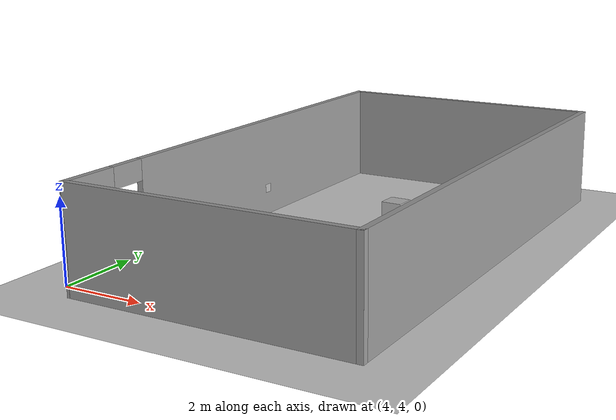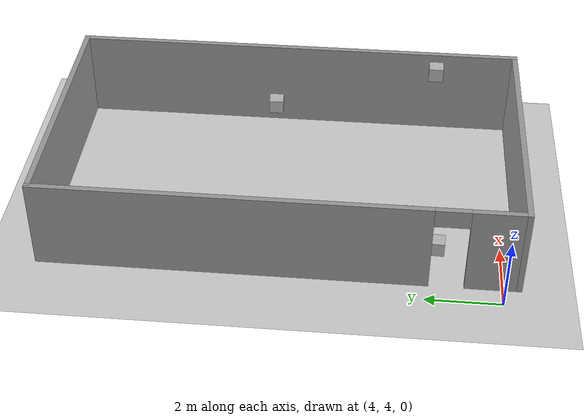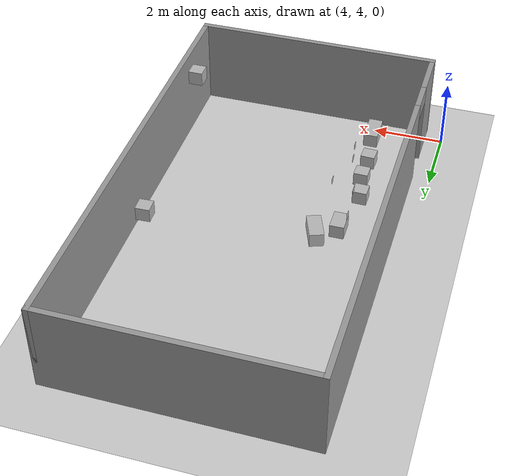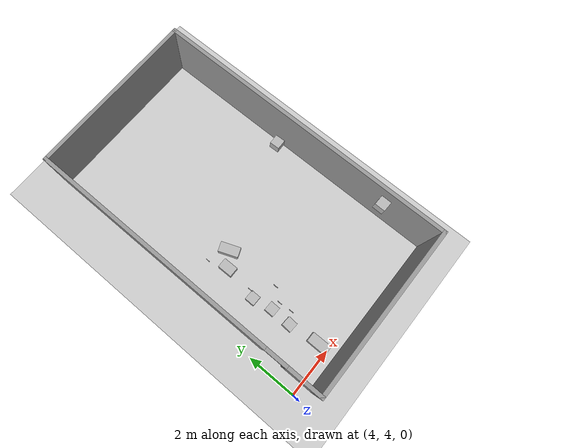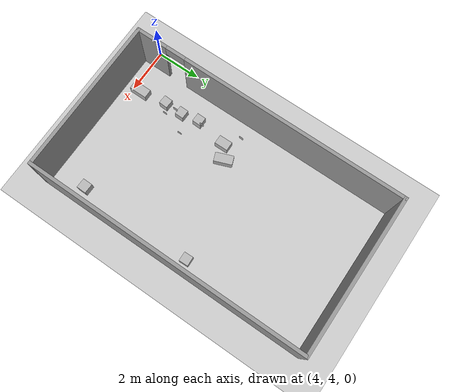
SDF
<sdf version="1.6">
 <world name="default">
  <model name="ground_plane">
   <static>1</static>
   <link name="link">
    <collision name="collision">
     <geometry><plane><normal>0 0 1</normal><size>300 300</size></plane></geometry>
     <surface>
      <contact><collide_bitmask>65535</collide_bitmask></contact>
      <friction><ode><mu>100</mu><mu2>50</mu2></ode></friction>
     </surface>
    </collision>
    <visual name="visual">
     <geometry><plane><normal>0 0 1</normal><size>100 100</size></plane></geometry>
     <material>
      <script><uri>file://media/materials/scripts/gazebo.material</uri><name>Gazebo/Grey</name></script>
     </material>
    </visual>
   </link>
  </model>
  <model name="Caja">
   <link name="link">
    <pose>0 0 0.25 0 -0 0</pose>
    <inertial>
     <mass>0.39</mass>
     <inertia><ixx>0.00058</ixx><ixy>0</ixy><ixz>0</ixz><iyy>0.00058</iyy><iyz>0</iyz><izz>0.00019</izz></inertia>
    </inertial>
    <collision name="collision"><geometry><box><size>0.4 0.4 0.4</size></box></geometry></collision>
    <visual name="visual">
     <geometry><box><size>0.4 0.4 0.4</size></box></geometry>
     <material>
      <script>
       <uri>model://Caja/materials/scripts</uri>
       <uri>model://Caja/materials/textures</uri>
       <name>Caja/Diffuse</name>
      </script>
     </material>
    </visual>
   </link>
   <pose>5.84748 5.89754 0.199997 1.57079 -6e-06 -0.052738</pose>
  </model>
  <model name="CuboQR2">
   <link name="link">
    <pose>0 0 0.25 0 -0 0</pose>
    <inertial>
     <mass>0.39</mass>
     <inertia><ixx>0.00058</ixx><ixy>0</ixy><ixz>0</ixz><iyy>0.00058</iyy><iyz>0</iyz><izz>0.00019</izz></inertia>
    </inertial>
    <collision name="collision"><geometry><box><size>0.4 0.4 0.4</size></box></geometry></collision>
    <visual name="visual">
     <geometry><box><size>0.4 0.4 0.4</size></box></geometry>
     <material>
      <script>
       <uri>model://Caja/materials/scripts</uri>
       <uri>model://Caja/materials/textures</uri>
       <name>Caja/Diffuse</name>
      </script>
     </material>
    </visual>
   </link>
   <pose>5.85201 6.48341 -0.05 1.6e-05 -0 -0.017766</pose>
  </model>
  <model name="CuboQR3">
   <link name="link">
    <pose>0 0 0.25 0 -0 0</pose>
    <inertial>
     <mass>0.39</mass>
     <inertia><ixx>0.00058</ixx><ixy>0</ixy><ixz>0</ixz><iyy>0.00058</iyy><iyz>0</iyz><izz>0.00019</izz></inertia>
    </inertial>
    <collision name="collision"><geometry><box><size>0.4 0.4 0.4</size></box></geometry></collision>
    <visual name="visual">
     <geometry><box><size>0.4 0.4 0.4</size></box></geometry>
     <material>
      <script>
       <uri>model://Caja/materials/scripts</uri>
       <uri>model://Caja/materials/textures</uri>
       <name>Caja/Diffuse</name>
      </script>
     </material>
    </visual>
   </link>
   <pose>5.70066 7.28507 -0.05 2.4e-05 -0 -0.014201</pose>
  </model>
  <model name="CuboQR4">
   <link name="link">
    <pose>0 0 0.25 0 -0 0</pose>
    <inertial>
     <mass>0.39</mass>
     <inertia><ixx>0.00058</ixx><ixy>0</ixy><ixz>0</ixz><iyy>0.00058</iyy><iyz>0</iyz><izz>0.00019</izz></inertia>
    </inertial>
    <collision name="collision"><geometry><box><size>0.4 0.8 0.4</size></box></geometry></collision>
    <visual name="visual">
     <geometry><box><size>0.4 0.8 0.4</size></box></geometry>
     <material>
      <script>
       <uri>model://Caja/materials/scripts</uri>
       <uri>model://Caja/materials/textures</uri>
       <name>Caja/Diffuse</name>
      </script>
     </material>
    </visual>
   </link>
   <pose>5.98368 4.39523 -0.056152 -0.01564 0 -1e-06</pose>
  </model>
  <model name="CuboQR8">
   <link name="link">
    <pose>0 0 0.25 0 -0 0</pose>
    <inertial>
     <mass>0.39</mass>
     <inertia><ixx>0.00058</ixx><ixy>0</ixy><ixz>0</ixz><iyy>0.00058</iyy><iyz>0</iyz><izz>0.00019</izz></inertia>
    </inertial>
    <collision name="collision"><geometry><box><size>0.4 0.8 0.4</size></box></geometry></collision>
    <visual name="visual">
     <geometry><box><size>0.4 0.8 0.4</size></box></geometry>
     <material>
      <script>
       <uri>model://Caja/materials/scripts</uri>
       <uri>model://Caja/materials/textures</uri>
       <name>Caja/Diffuse</name>
      </script>
     </material>
    </visual>
   </link>
   <pose>6.53522 9.1266 -0.05 -1e-06 9e-06 0.366667</pose>
  </model>
  <model name="CuboQR30">
   <link name="link">
    <pose>0 0 0.25 0 -0 0</pose>
    <inertial>
     <mass>0.39</mass>
     <inertia><ixx>0.00058</ixx><ixy>0</ixy><ixz>0</ixz><iyy>0.00058</iyy><iyz>0</iyz><izz>0.00019</izz></inertia>
    </inertial>
    <collision name="collision"><geometry><box><size>0.4 0.6 0.4</size></box></geometry></collision>
    <visual name="visual">
     <geometry><box><size>0.4 0.6 0.4</size></box></geometry>
     <material>
      <script>
       <uri>model://Caja/materials/scripts</uri>
       <uri>model://Caja/materials/textures</uri>
       <name>Caja/Diffuse</name>
      </script>
     </material>
    </visual>
   </link>
   <pose>5.97302 8.728 -0.050005 -1.6e-05 0 0.010739</pose>
  </model>
  <model name="qrware">
   <pose>7.98806 9.76227 0 0 -0 0</pose>
   <link name="Wall_2">
    <pose>-3.425 0 0 0 -0 1.5708</pose>
    <visual name="Wall_2_Visual_0">
     <pose>-5.51907 0 1.25 0 -0 0</pose>
     <geometry><box><size>1.46186 0.15 2.5</size></box></geometry>
     <material>
      <script><uri>file://media/materials/scripts/gazebo.material</uri><name>Gazebo/Grey</name></script>
      <ambient>1 1 1 1</ambient>
     </material>
     <meta><layer>0</layer></meta>
    </visual>
    <collision name="Wall_2_Collision_0">
     <geometry><box><size>1.46186 0.15 2.5</size></box></geometry>
     <pose>-5.51907 0 1.25 0 -0 0</pose>
    </collision>
    <visual name="Wall_2_Visual_1">
     <pose>1.18093 0 1.25 0 -0 0</pose>
     <geometry><box><size>10.1381 0.15 2.5</size></box></geometry>
     <material>
      <script><uri>file://media/materials/scripts/gazebo.material</uri><name>Gazebo/Grey</name></script>
      <ambient>1 1 1 1</ambient>
     </material>
     <meta><layer>0</layer></meta>
    </visual>
    <collision name="Wall_2_Collision_1">
     <geometry><box><size>10.1381 0.15 2.5</size></box></geometry>
     <pose>1.18093 0 1.25 0 -0 0</pose>
    </collision>
    <visual name="Wall_2_Visual_2">
     <pose>-4.33814 0 2.25 0 -0 0</pose>
     <geometry><box><size>0.9 0.15 0.5</size></box></geometry>
     <material>
      <script><uri>file://media/materials/scripts/gazebo.material</uri><name>Gazebo/Grey</name></script>
      <ambient>1 1 1 1</ambient>
     </material>
     <meta><layer>0</layer></meta>
    </visual>
    <collision name="Wall_2_Collision_2">
     <geometry><box><size>0.9 0.15 0.5</size></box></geometry>
     <pose>-4.33814 0 2.25 0 -0 0</pose>
    </collision>
   </link>
   <link name="Wall_3">
    <collision name="Wall_3_Collision">
     <geometry><box><size>7 0.15 2.5</size></box></geometry>
     <pose>0 0 1.25 0 -0 0</pose>
    </collision>
    <visual name="Wall_3_Visual">
     <pose>0 0 1.25 0 -0 0</pose>
     <geometry><box><size>7 0.15 2.5</size></box></geometry>
     <material>
      <script><uri>file://media/materials/scripts/gazebo.material</uri><name>Gazebo/Grey</name></script>
      <ambient>1 1 1 1</ambient>
     </material>
     <meta><layer>0</layer></meta>
    </visual>
    <pose>0 6.175 0 0 -0 0</pose>
   </link>
   <link name="Wall_4">
    <collision name="Wall_4_Collision">
     <geometry><box><size>12.5 0.15 2.5</size></box></geometry>
     <pose>0 0 1.25 0 -0 0</pose>
    </collision>
    <visual name="Wall_4_Visual">
     <pose>0 0 1.25 0 -0 0</pose>
     <geometry><box><size>12.5 0.15 2.5</size></box></geometry>
     <material>
      <script><uri>file://media/materials/scripts/gazebo.material</uri><name>Gazebo/Grey</name></script>
      <ambient>1 1 1 1</ambient>
     </material>
     <meta><layer>0</layer></meta>
    </visual>
    <pose>3.425 0 0 0 0 -1.5708</pose>
   </link>
   <link name="Wall_6">
    <collision name="Wall_6_Collision">
     <geometry><box><size>7 0.15 2.5</size></box></geometry>
     <pose>0 0 1.25 0 -0 0</pose>
    </collision>
    <visual name="Wall_6_Visual">
     <pose>0 0 1.25 0 -0 0</pose>
     <geometry><box><size>7 0.15 2.5</size></box></geometry>
     <material>
      <script><uri>file://media/materials/scripts/gazebo.material</uri><name>Gazebo/Grey</name></script>
      <ambient>1 1 1 1</ambient>
     </material>
     <meta><layer>0</layer></meta>
    </visual>
    <pose>0 -6.175 0 0 -0 0</pose>
   </link>
   <static>1</static>
  </model>
  <model name="Plano">
   <link name="link">
    <gravity>0</gravity>
    <pose>0 0 0.25 0 -0 0</pose>
    <inertial>
     <mass>1e-06</mass>
     <inertia><ixx>0.00058</ixx><ixy>0</ixy><ixz>0</ixz><iyy>0.00058</iyy><iyz>0</iyz><izz>0.00019</izz></inertia>
    </inertial>
    <collision name="collision"><geometry><box><size>0.2 1e-06 0.2</size></box></geometry></collision>
    <visual name="visual">
     <geometry><box><size>0.2 1e-06 0.2</size></box></geometry>
     <material>
      <script>
       <uri>model://Plano/materials/scripts</uri>
       <uri>model://Plano/materials/textures</uri>
       <name>Plano/Diffuse</name>
      </script>
     </material>
     <cast_shadows>0</cast_shadows>
    </visual>
   </link>
   <pose>6.24495 5.89293 0.053748 0 0 -1.57043</pose>
  </model>
  <model name="Plano2">
   <link name="link">
    <gravity>0</gravity>
    <pose>0 0 0.25 0 -0 0</pose>
    <inertial>
     <mass>1e-06</mass>
     <inertia><ixx>0.00058</ixx><ixy>0</ixy><ixz>0</ixz><iyy>0.00058</iyy><iyz>0</iyz><izz>0.00019</izz></inertia>
    </inertial>
    <collision name="collision"><geometry><box><size>0.2 1e-06 0.2</size></box></geometry></collision>
    <visual name="visual">
     <geometry><box><size>0.2 1e-06 0.2</size></box></geometry>
     <material>
      <script>
       <uri>model://Plano2/materials/scripts</uri>
       <uri>model://Plano2/materials/textures</uri>
       <name>Plano2/Diffuse</name>
      </script>
     </material>
     <cast_shadows>0</cast_shadows>
    </visual>
   </link>
   <pose>6.11634 6.41923 0.90763 0 0 -1.5813</pose>
  </model>
  <model name="Plano3">
   <link name="link">
    <gravity>0</gravity>
    <pose>0 0 0.25 0 -0 0</pose>
    <inertial>
     <mass>1e-06</mass>
     <inertia><ixx>0.00058</ixx><ixy>0</ixy><ixz>0</ixz><iyy>0.00058</iyy><iyz>0</iyz><izz>0.00019</izz></inertia>
    </inertial>
    <collision name="collision"><geometry><box><size>0.2 1e-06 0.2</size></box></geometry></collision>
    <visual name="visual">
     <geometry><box><size>0.2 1e-06 0.2</size></box></geometry>
     <material>
      <script>
       <uri>model://Plano3/materials/scripts</uri>
       <uri>model://Plano3/materials/textures</uri>
       <name>Plano3/Diffuse</name>
      </script>
     </material>
     <cast_shadows>0</cast_shadows>
    </visual>
   </link>
   <pose>6.60144 6.90216 -0.05097 0 0 -1.57531</pose>
  </model>
  <model name="Plano4">
   <link name="link">
    <gravity>0</gravity>
    <pose>0 0 0.25 0 -0 0</pose>
    <inertial>
     <mass>1e-06</mass>
     <inertia><ixx>0.00058</ixx><ixy>0</ixy><ixz>0</ixz><iyy>0.00058</iyy><iyz>0</iyz><izz>0.00019</izz></inertia>
    </inertial>
    <collision name="collision"><geometry><box><size>0.2 1e-06 0.2</size></box></geometry></collision>
    <visual name="visual">
     <geometry><box><size>0.2 1e-06 0.2</size></box></geometry>
     <material>
      <script>
       <uri>model://Plano4/materials/scripts</uri>
       <uri>model://Plano4/materials/textures</uri>
       <name>Plano4/Diffuse</name>
      </script>
     </material>
     <cast_shadows>0</cast_shadows>
    </visual>
   </link>
   <pose>5.86012 7.53797 0.263456 0 0 -1.5802</pose>
  </model>
  <model name="Plano30">
   <link name="link">
    <gravity>0</gravity>
    <pose>0 0 0.25 0 -0 0</pose>
    <inertial>
     <mass>1e-06</mass>
     <inertia><ixx>0.00058</ixx><ixy>0</ixy><ixz>0</ixz><iyy>0.00058</iyy><iyz>0</iyz><izz>0.00019</izz></inertia>
    </inertial>
    <collision name="collision"><geometry><box><size>0.2 1e-06 0.2</size></box></geometry></collision>
    <visual name="visual">
     <geometry><box><size>0.2 1e-06 0.2</size></box></geometry>
     <material>
      <script>
       <uri>model://Plano30/materials/scripts</uri>
       <uri>model://Plano30/materials/textures</uri>
       <name>Plano30/Diffuse</name>
      </script>
     </material>
     <cast_shadows>0</cast_shadows>
    </visual>
   </link>
   <pose>5.63172 9.35401 0.90979 0 0 -1.61066</pose>
  </model>
  <model name="CuboQR19">
   <link name="link">
    <pose>-3.17942 0.270899 -2.08094 0.030877 0.017361 -0.698851</pose>
    <inertial>
     <mass>0.39</mass>
     <inertia><ixx>0.00058</ixx><ixy>0</ixy><ixz>0</ixz><iyy>0.00058</iyy><iyz>0</iyz><izz>0.00019</izz></inertia>
    </inertial>
    <visual name="visual">
     <geometry><box><size>0.4 0.4 0.4</size></box></geometry>
     <material>
      <script>
       <uri>model://Caja/materials/scripts</uri>
       <uri>model://Caja/materials/textures</uri>
       <name>Caja/Diffuse</name>
      </script>
      <shader type="pixel"/>
     </material>
    </visual>
    <collision name="collision">
     <geometry><box><size>0.4 0.4 0.4</size></box></geometry>
     <surface>
      <friction>
       <ode><mu>1</mu><mu2>1</mu2><fdir1>0 0 0</fdir1><slip1>0</slip1><slip2>0</slip2></ode>
       <torsional>
        <coefficient>1</coefficient>
        <patch_radius>0</patch_radius>
        <surface_radius>0</surface_radius>
        <use_patch_radius>1</use_patch_radius>
        <ode><slip>0</slip></ode>
       </torsional>
      </friction>
      <bounce><restitution_coefficient>0</restitution_coefficient><threshold>1e+06</threshold></bounce>
      <contact>
       <collide_without_contact>0</collide_without_contact>
       <collide_without_contact_bitmask>1</collide_without_contact_bitmask>
       <collide_bitmask>1</collide_bitmask>
       <ode>
        <soft_cfm>0</soft_cfm>
        <soft_erp>0.2</soft_erp>
        <kp>1e+13</kp>
        <kd>1</kd>
        <max_vel>0.01</max_vel>
        <min_depth>0</min_depth>
       </ode>
       <bullet>
        <split_impulse>1</split_impulse>
        <split_impulse_penetration_threshold>-0.01</split_impulse_penetration_threshold>
        <soft_cfm>0</soft_cfm>
        <soft_erp>0.2</soft_erp>
        <kp>1e+13</kp>
        <kd>1</kd>
       </bullet>
      </contact>
     </surface>
    </collision>
   </link>
   <static>0</static>
   <pose>8.40639 7.7465 0.135931 3.10678 -0.006574 2.42268</pose>
  </model>
  <model name="CuboQR29">
   <link name="link">
    <pose>0.687816 0.602393 1.2509 0.424631 -0.083036 -0.038114</pose>
    <inertial>
     <mass>0.39</mass>
     <inertia><ixx>0.00058</ixx><ixy>0</ixy><ixz>0</ixz><iyy>0.00058</iyy><iyz>0</iyz><izz>0.00019</izz></inertia>
    </inertial>
    <visual name="visual">
     <geometry><box><size>0.4 0.4 0.4</size></box></geometry>
     <material>
      <script>
       <uri>model://Caja/materials/scripts</uri>
       <uri>model://Caja/materials/textures</uri>
       <name>Caja/Diffuse</name>
      </script>
      <shader type="pixel"/>
     </material>
    </visual>
    <collision name="collision">
     <geometry><box><size>0.4 0.4 0.4</size></box></geometry>
     <surface>
      <friction>
       <ode><mu>1</mu><mu2>1</mu2><fdir1>0 0 0</fdir1><slip1>0</slip1><slip2>0</slip2></ode>
       <torsional>
        <coefficient>1</coefficient>
        <patch_radius>0</patch_radius>
        <surface_radius>0</surface_radius>
        <use_patch_radius>1</use_patch_radius>
        <ode><slip>0</slip></ode>
       </torsional>
      </friction>
      <bounce><restitution_coefficient>0</restitution_coefficient><threshold>1e+06</threshold></bounce>
      <contact>
       <collide_without_contact>0</collide_without_contact>
       <collide_without_contact_bitmask>1</collide_without_contact_bitmask>
       <collide_bitmask>1</collide_bitmask>
       <ode>
        <soft_cfm>0</soft_cfm>
        <soft_erp>0.2</soft_erp>
        <kp>1e+13</kp>
        <kd>1</kd>
        <max_vel>0.01</max_vel>
        <min_depth>0</min_depth>
       </ode>
       <bullet>
        <split_impulse>1</split_impulse>
        <split_impulse_penetration_threshold>-0.01</split_impulse_penetration_threshold>
        <soft_cfm>0</soft_cfm>
        <soft_erp>0.2</soft_erp>
        <kp>1e+13</kp>
        <kd>1</kd>
       </bullet>
      </contact>
     </surface>
    </collision>
   </link>
   <static>0</static>
   <pose>9.85986 9.48093 0.085081 -0.429302 -1.47943 -1.52934</pose>
  </model>
 </world>
</sdf>
